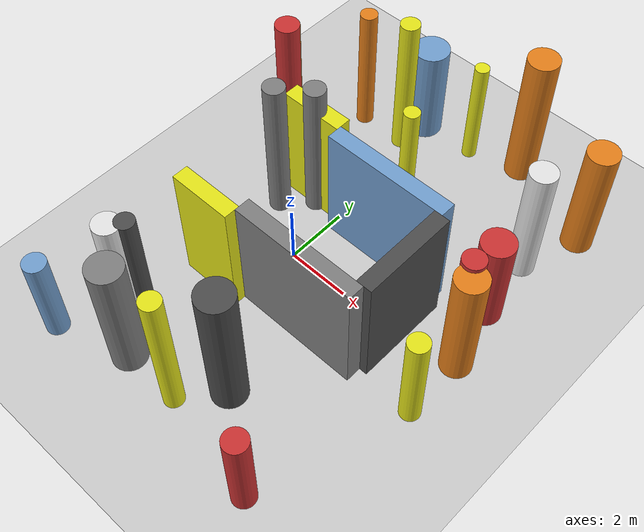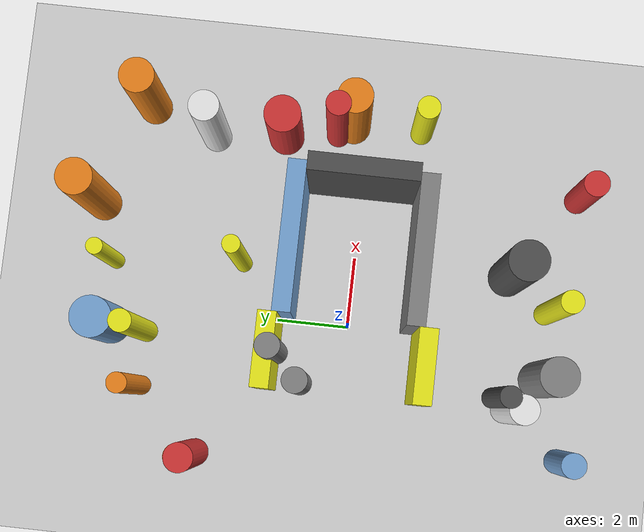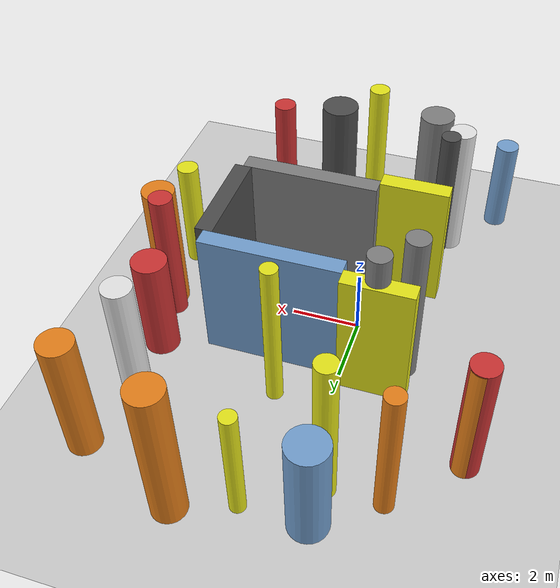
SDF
<?xml version='1.0'?>
<sdf version='1.6'>
  <world name='routeA_rl_v1__dense_recovery__rl_train__cul_de_sac_trap__000086'>
    <!-- Sun light -->
    <light name='sun' type='directional'>
      <cast_shadows>1</cast_shadows>
      <pose>0 0 10 0 0 0</pose>
      <diffuse>0.8 0.8 0.8 1</diffuse>
      <specular>0.2 0.2 0.2 1</specular>
      <attenuation>
        <range>1000</range>
        <constant>0.9</constant>
        <linear>0.01</linear>
        <quadratic>0.001</quadratic>
      </attenuation>
      <direction>-0.5 0.1 -0.9</direction>
    </light>

    <!-- Ground plane -->
    <model name='ground_plane'>
      <static>1</static>
      <link name='link'>
        <collision name='collision'>
          <geometry>
            <plane>
              <normal>0 0 1</normal>
              <size>100 100</size>
            </plane>
          </geometry>
          <surface>
            <contact>
              <collide_bitmask>65535</collide_bitmask>
              <ode/>
            </contact>
            <friction>
              <ode>
                <mu>100</mu>
                <mu2>50</mu2>
              </ode>
              <torsional><ode/></torsional>
            </friction>
            <bounce/>
          </surface>
          <max_contacts>10</max_contacts>
        </collision>
        <visual name='visual'>
          <cast_shadows>0</cast_shadows>
          <geometry>
            <plane>
              <normal>0 0 1</normal>
              <size>100 100</size>
            </plane>
          </geometry>
          <material>
            <script>
              <uri>file://media/materials/scripts/gazebo.material</uri>
              <n>Gazebo/Grey</n>
            </script>
          </material>
        </visual>
      </link>
    </model>

    <!-- Environment -->
    <magnetic_field>6e-06 2.3e-05 -4.2e-05</magnetic_field>
    <atmosphere type='adiabatic'/>
    <physics name='default_physics' default='0' type='ode'>
      <gravity>0 0 -9.8</gravity>
      <max_step_size>0.004</max_step_size>
      <real_time_factor>1</real_time_factor>
      <real_time_update_rate>250</real_time_update_rate>
    </physics>
    <scene>
      <ambient>0.4 0.4 0.4 1</ambient>
      <background>0.7 0.7 0.7 1</background>
      <shadows>1</shadows>
    </scene>
    <wind/>
    <spherical_coordinates>
      <surface_model>EARTH_WGS84</surface_model>
      <latitude_deg>0</latitude_deg>
      <longitude_deg>0</longitude_deg>
      <elevation>0</elevation>
      <heading_deg>0</heading_deg>
    </spherical_coordinates>

    <!-- ============ OBSTACLES (28) ============ -->
    <model name='trap_side_l'>
      <static>1</static>
      <link name='link'>
        <visual name='visual'>
          <geometry>
            <box>
              <size>4.0000 0.5000 4.0000</size>
            </box>
          </geometry>
          <material>
            <script>
              <n>Gazebo/Grey</n>
              <uri>file://media/materials/scripts/gazebo.material</uri>
            </script>
            <ambient>0.5 0.5 0.5 1</ambient>
          </material>
        </visual>
        <collision name='collision'>
          <geometry>
            <box>
              <size>4.0000 0.5000 4.0000</size>
            </box>
          </geometry>
          <max_contacts>10</max_contacts>
          <surface>
            <contact><ode/></contact>
            <bounce/>
            <friction>
              <ode><mu>1</mu><mu2>1</mu2></ode>
              <torsional><ode/></torsional>
            </friction>
          </surface>
        </collision>
      </link>
      <pose>2.0000 -1.7500 2.0000 0 0 0.0000</pose>
    </model>

    <model name='trap_side_r'>
      <static>1</static>
      <link name='link'>
        <visual name='visual'>
          <geometry>
            <box>
              <size>4.0000 0.5000 4.0000</size>
            </box>
          </geometry>
          <material>
            <script>
              <n>Gazebo/Blue</n>
              <uri>file://media/materials/scripts/gazebo.material</uri>
            </script>
            <ambient>0.447 0.624 0.812 1</ambient>
          </material>
        </visual>
        <collision name='collision'>
          <geometry>
            <box>
              <size>4.0000 0.5000 4.0000</size>
            </box>
          </geometry>
          <max_contacts>10</max_contacts>
          <surface>
            <contact><ode/></contact>
            <bounce/>
            <friction>
              <ode><mu>1</mu><mu2>1</mu2></ode>
              <torsional><ode/></torsional>
            </friction>
          </surface>
        </collision>
      </link>
      <pose>2.0000 1.7500 2.0000 0 0 0.0000</pose>
    </model>

    <model name='trap_back'>
      <static>1</static>
      <link name='link'>
        <visual name='visual'>
          <geometry>
            <box>
              <size>0.5000 3.0000 4.0000</size>
            </box>
          </geometry>
          <material>
            <script>
              <n>Gazebo/DarkGrey</n>
              <uri>file://media/materials/scripts/gazebo.material</uri>
            </script>
            <ambient>0.3 0.3 0.3 1</ambient>
          </material>
        </visual>
        <collision name='collision'>
          <geometry>
            <box>
              <size>0.5000 3.0000 4.0000</size>
            </box>
          </geometry>
          <max_contacts>10</max_contacts>
          <surface>
            <contact><ode/></contact>
            <bounce/>
            <friction>
              <ode><mu>1</mu><mu2>1</mu2></ode>
              <torsional><ode/></torsional>
            </friction>
          </surface>
        </collision>
      </link>
      <pose>4.0000 0.0000 2.0000 0 0 0.0000</pose>
    </model>

    <model name='trap_funnel_l'>
      <static>1</static>
      <link name='link'>
        <visual name='visual'>
          <geometry>
            <box>
              <size>2.0000 0.5000 4.0000</size>
            </box>
          </geometry>
          <material>
            <script>
              <n>Gazebo/Yellow</n>
              <uri>file://media/materials/scripts/gazebo.material</uri>
            </script>
            <ambient>0.9 0.9 0.1 1</ambient>
          </material>
        </visual>
        <collision name='collision'>
          <geometry>
            <box>
              <size>2.0000 0.5000 4.0000</size>
            </box>
          </geometry>
          <max_contacts>10</max_contacts>
          <surface>
            <contact><ode/></contact>
            <bounce/>
            <friction>
              <ode><mu>1</mu><mu2>1</mu2></ode>
              <torsional><ode/></torsional>
            </friction>
          </surface>
        </collision>
      </link>
      <pose>-1.0000 -2.1000 2.0000 0 0 0.0000</pose>
    </model>

    <model name='trap_funnel_r'>
      <static>1</static>
      <link name='link'>
        <visual name='visual'>
          <geometry>
            <box>
              <size>2.0000 0.5000 4.0000</size>
            </box>
          </geometry>
          <material>
            <script>
              <n>Gazebo/Yellow</n>
              <uri>file://media/materials/scripts/gazebo.material</uri>
            </script>
            <ambient>0.9 0.9 0.1 1</ambient>
          </material>
        </visual>
        <collision name='collision'>
          <geometry>
            <box>
              <size>2.0000 0.5000 4.0000</size>
            </box>
          </geometry>
          <max_contacts>10</max_contacts>
          <surface>
            <contact><ode/></contact>
            <bounce/>
            <friction>
              <ode><mu>1</mu><mu2>1</mu2></ode>
              <torsional><ode/></torsional>
            </friction>
          </surface>
        </collision>
      </link>
      <pose>-1.0000 2.1000 2.0000 0 0 0.0000</pose>
    </model>

    <model name='trap_scatter_0'>
      <static>1</static>
      <link name='link'>
        <visual name='visual'>
          <geometry>
            <cylinder>
              <radius>0.2921</radius>
              <length>4.3267</length>
            </cylinder>
          </geometry>
          <material>
            <script>
              <n>Gazebo/DarkGrey</n>
              <uri>file://media/materials/scripts/gazebo.material</uri>
            </script>
            <ambient>0.3 0.3 0.3 1</ambient>
          </material>
        </visual>
        <collision name='collision'>
          <geometry>
            <cylinder>
              <radius>0.2921</radius>
              <length>4.3267</length>
            </cylinder>
          </geometry>
          <max_contacts>10</max_contacts>
          <surface>
            <contact><ode/></contact>
            <bounce/>
            <friction>
              <ode><mu>1</mu><mu2>1</mu2></ode>
              <torsional><ode/></torsional>
            </friction>
          </surface>
        </collision>
      </link>
      <pose>-1.5495 -4.3039 2.1633 0 0 0.0000</pose>
    </model>

    <model name='trap_scatter_2'>
      <static>1</static>
      <link name='link'>
        <visual name='visual'>
          <geometry>
            <cylinder>
              <radius>0.5627</radius>
              <length>3.3087</length>
            </cylinder>
          </geometry>
          <material>
            <script>
              <n>Gazebo/Blue</n>
              <uri>file://media/materials/scripts/gazebo.material</uri>
            </script>
            <ambient>0.447 0.624 0.812 1</ambient>
          </material>
        </visual>
        <collision name='collision'>
          <geometry>
            <cylinder>
              <radius>0.5627</radius>
              <length>3.3087</length>
            </cylinder>
          </geometry>
          <max_contacts>10</max_contacts>
          <surface>
            <contact><ode/></contact>
            <bounce/>
            <friction>
              <ode><mu>1</mu><mu2>1</mu2></ode>
              <torsional><ode/></torsional>
            </friction>
          </surface>
        </collision>
      </link>
      <pose>-0.6096 6.7368 1.6544 0 0 0.0000</pose>
    </model>

    <model name='trap_scatter_3'>
      <static>1</static>
      <link name='link'>
        <visual name='visual'>
          <geometry>
            <cylinder>
              <radius>0.5402</radius>
              <length>4.6529</length>
            </cylinder>
          </geometry>
          <material>
            <script>
              <n>Gazebo/DarkGrey</n>
              <uri>file://media/materials/scripts/gazebo.material</uri>
            </script>
            <ambient>0.3 0.3 0.3 1</ambient>
          </material>
        </visual>
        <collision name='collision'>
          <geometry>
            <cylinder>
              <radius>0.5402</radius>
              <length>4.6529</length>
            </cylinder>
          </geometry>
          <max_contacts>10</max_contacts>
          <surface>
            <contact><ode/></contact>
            <bounce/>
            <friction>
              <ode><mu>1</mu><mu2>1</mu2></ode>
              <torsional><ode/></torsional>
            </friction>
          </surface>
        </collision>
      </link>
      <pose>1.9129 -4.4012 2.3265 0 0 0.0000</pose>
    </model>

    <model name='trap_scatter_4'>
      <static>1</static>
      <link name='link'>
        <visual name='visual'>
          <geometry>
            <cylinder>
              <radius>0.2256</radius>
              <length>3.6580</length>
            </cylinder>
          </geometry>
          <material>
            <script>
              <n>Gazebo/Yellow</n>
              <uri>file://media/materials/scripts/gazebo.material</uri>
            </script>
            <ambient>0.9 0.9 0.1 1</ambient>
          </material>
        </visual>
        <collision name='collision'>
          <geometry>
            <cylinder>
              <radius>0.2256</radius>
              <length>3.6580</length>
            </cylinder>
          </geometry>
          <max_contacts>10</max_contacts>
          <surface>
            <contact><ode/></contact>
            <bounce/>
            <friction>
              <ode><mu>1</mu><mu2>1</mu2></ode>
              <torsional><ode/></torsional>
            </friction>
          </surface>
        </collision>
      </link>
      <pose>1.2137 6.7939 1.8290 0 0 0.0000</pose>
    </model>

    <model name='trap_scatter_5'>
      <static>1</static>
      <link name='link'>
        <visual name='visual'>
          <geometry>
            <cylinder>
              <radius>0.3443</radius>
              <length>4.0080</length>
            </cylinder>
          </geometry>
          <material>
            <script>
              <n>Gazebo/Orange</n>
              <uri>file://media/materials/scripts/gazebo.material</uri>
            </script>
            <ambient>0.9 0.5 0.1 1</ambient>
          </material>
        </visual>
        <collision name='collision'>
          <geometry>
            <cylinder>
              <radius>0.3443</radius>
              <length>4.0080</length>
            </cylinder>
          </geometry>
          <max_contacts>10</max_contacts>
          <surface>
            <contact><ode/></contact>
            <bounce/>
            <friction>
              <ode><mu>1</mu><mu2>1</mu2></ode>
              <torsional><ode/></torsional>
            </friction>
          </surface>
        </collision>
      </link>
      <pose>-3.9531 3.9830 2.0040 0 0 0.0000</pose>
    </model>

    <model name='trap_scatter_6'>
      <static>1</static>
      <link name='link'>
        <visual name='visual'>
          <geometry>
            <cylinder>
              <radius>0.3383</radius>
              <length>4.2226</length>
            </cylinder>
          </geometry>
          <material>
            <script>
              <n>Gazebo/Red</n>
              <uri>file://media/materials/scripts/gazebo.material</uri>
            </script>
            <ambient>0.8 0.2 0.2 1</ambient>
          </material>
        </visual>
        <collision name='collision'>
          <geometry>
            <cylinder>
              <radius>0.3383</radius>
              <length>4.2226</length>
            </cylinder>
          </geometry>
          <max_contacts>10</max_contacts>
          <surface>
            <contact><ode/></contact>
            <bounce/>
            <friction>
              <ode><mu>1</mu><mu2>1</mu2></ode>
              <torsional><ode/></torsional>
            </friction>
          </surface>
        </collision>
      </link>
      <pose>5.5328 0.8438 2.1113 0 0 0.0000</pose>
    </model>

    <model name='trap_scatter_7'>
      <static>1</static>
      <link name='link'>
        <visual name='visual'>
          <geometry>
            <cylinder>
              <radius>0.3360</radius>
              <length>4.9538</length>
            </cylinder>
          </geometry>
          <material>
            <script>
              <n>Gazebo/Grey</n>
              <uri>file://media/materials/scripts/gazebo.material</uri>
            </script>
            <ambient>0.5 0.5 0.5 1</ambient>
          </material>
        </visual>
        <collision name='collision'>
          <geometry>
            <cylinder>
              <radius>0.3360</radius>
              <length>4.9538</length>
            </cylinder>
          </geometry>
          <max_contacts>10</max_contacts>
          <surface>
            <contact><ode/></contact>
            <bounce/>
            <friction>
              <ode><mu>1</mu><mu2>1</mu2></ode>
              <torsional><ode/></torsional>
            </friction>
          </surface>
        </collision>
      </link>
      <pose>-1.7202 1.1747 2.4769 0 0 0.0000</pose>
    </model>

    <model name='trap_scatter_8'>
      <static>1</static>
      <link name='link'>
        <visual name='visual'>
          <geometry>
            <cylinder>
              <radius>0.3127</radius>
              <length>3.5089</length>
            </cylinder>
          </geometry>
          <material>
            <script>
              <n>Gazebo/Yellow</n>
              <uri>file://media/materials/scripts/gazebo.material</uri>
            </script>
            <ambient>0.9 0.9 0.1 1</ambient>
          </material>
        </visual>
        <collision name='collision'>
          <geometry>
            <cylinder>
              <radius>0.3127</radius>
              <length>3.5089</length>
            </cylinder>
          </geometry>
          <max_contacts>10</max_contacts>
          <surface>
            <contact><ode/></contact>
            <bounce/>
            <friction>
              <ode><mu>1</mu><mu2>1</mu2></ode>
              <torsional><ode/></torsional>
            </friction>
          </surface>
        </collision>
      </link>
      <pose>5.8328 -1.5401 1.7545 0 0 0.0000</pose>
    </model>

    <model name='trap_scatter_9'>
      <static>1</static>
      <link name='link'>
        <visual name='visual'>
          <geometry>
            <cylinder>
              <radius>0.4874</radius>
              <length>4.6637</length>
            </cylinder>
          </geometry>
          <material>
            <script>
              <n>Gazebo/Orange</n>
              <uri>file://media/materials/scripts/gazebo.material</uri>
            </script>
            <ambient>0.9 0.5 0.1 1</ambient>
          </material>
        </visual>
        <collision name='collision'>
          <geometry>
            <cylinder>
              <radius>0.4874</radius>
              <length>4.6637</length>
            </cylinder>
          </geometry>
          <max_contacts>10</max_contacts>
          <surface>
            <contact><ode/></contact>
            <bounce/>
            <friction>
              <ode><mu>1</mu><mu2>1</mu2></ode>
              <torsional><ode/></torsional>
            </friction>
          </surface>
        </collision>
      </link>
      <pose>2.8281 7.3384 2.3318 0 0 0.0000</pose>
    </model>

    <model name='trap_scatter_10'>
      <static>1</static>
      <link name='link'>
        <visual name='visual'>
          <geometry>
            <cylinder>
              <radius>0.2401</radius>
              <length>4.7761</length>
            </cylinder>
          </geometry>
          <material>
            <script>
              <n>Gazebo/Yellow</n>
              <uri>file://media/materials/scripts/gazebo.material</uri>
            </script>
            <ambient>0.9 0.9 0.1 1</ambient>
          </material>
        </visual>
        <collision name='collision'>
          <geometry>
            <cylinder>
              <radius>0.2401</radius>
              <length>4.7761</length>
            </cylinder>
          </geometry>
          <max_contacts>10</max_contacts>
          <surface>
            <contact><ode/></contact>
            <bounce/>
            <friction>
              <ode><mu>1</mu><mu2>1</mu2></ode>
              <torsional><ode/></torsional>
            </friction>
          </surface>
        </collision>
      </link>
      <pose>1.5209 3.1479 2.3881 0 0 0.0000</pose>
    </model>

    <model name='trap_scatter_11'>
      <static>1</static>
      <link name='link'>
        <visual name='visual'>
          <geometry>
            <cylinder>
              <radius>0.3046</radius>
              <length>4.7234</length>
            </cylinder>
          </geometry>
          <material>
            <script>
              <n>Gazebo/Yellow</n>
              <uri>file://media/materials/scripts/gazebo.material</uri>
            </script>
            <ambient>0.9 0.9 0.1 1</ambient>
          </material>
        </visual>
        <collision name='collision'>
          <geometry>
            <cylinder>
              <radius>0.3046</radius>
              <length>4.7234</length>
            </cylinder>
          </geometry>
          <max_contacts>10</max_contacts>
          <surface>
            <contact><ode/></contact>
            <bounce/>
            <friction>
              <ode><mu>1</mu><mu2>1</mu2></ode>
              <torsional><ode/></torsional>
            </friction>
          </surface>
        </collision>
      </link>
      <pose>0.9802 -5.5703 2.3617 0 0 0.0000</pose>
    </model>

    <model name='trap_scatter_12'>
      <static>1</static>
      <link name='link'>
        <visual name='visual'>
          <geometry>
            <cylinder>
              <radius>0.4768</radius>
              <length>3.9310</length>
            </cylinder>
          </geometry>
          <material>
            <script>
              <n>Gazebo/Orange</n>
              <uri>file://media/materials/scripts/gazebo.material</uri>
            </script>
            <ambient>0.9 0.5 0.1 1</ambient>
          </material>
        </visual>
        <collision name='collision'>
          <geometry>
            <cylinder>
              <radius>0.4768</radius>
              <length>3.9310</length>
            </cylinder>
          </geometry>
          <max_contacts>10</max_contacts>
          <surface>
            <contact><ode/></contact>
            <bounce/>
            <friction>
              <ode><mu>1</mu><mu2>1</mu2></ode>
              <torsional><ode/></torsional>
            </friction>
          </surface>
        </collision>
      </link>
      <pose>5.7739 6.2037 1.9655 0 0 0.0000</pose>
    </model>

    <model name='trap_scatter_13'>
      <static>1</static>
      <link name='link'>
        <visual name='visual'>
          <geometry>
            <cylinder>
              <radius>0.3894</radius>
              <length>4.0336</length>
            </cylinder>
          </geometry>
          <material>
            <script>
              <n>Gazebo/Red</n>
              <uri>file://media/materials/scripts/gazebo.material</uri>
            </script>
            <ambient>0.8 0.2 0.2 1</ambient>
          </material>
        </visual>
        <collision name='collision'>
          <geometry>
            <cylinder>
              <radius>0.3894</radius>
              <length>4.0336</length>
            </cylinder>
          </geometry>
          <max_contacts>10</max_contacts>
          <surface>
            <contact><ode/></contact>
            <bounce/>
            <friction>
              <ode><mu>1</mu><mu2>1</mu2></ode>
              <torsional><ode/></torsional>
            </friction>
          </surface>
        </collision>
      </link>
      <pose>-3.9727 3.9301 2.0168 0 0 0.0000</pose>
    </model>

    <model name='trap_scatter_14'>
      <static>1</static>
      <link name='link'>
        <visual name='visual'>
          <geometry>
            <cylinder>
              <radius>0.4750</radius>
              <length>4.0962</length>
            </cylinder>
          </geometry>
          <material>
            <script>
              <n>Gazebo/Orange</n>
              <uri>file://media/materials/scripts/gazebo.material</uri>
            </script>
            <ambient>0.9 0.5 0.1 1</ambient>
          </material>
        </visual>
        <collision name='collision'>
          <geometry>
            <cylinder>
              <radius>0.4750</radius>
              <length>4.0962</length>
            </cylinder>
          </geometry>
          <max_contacts>10</max_contacts>
          <surface>
            <contact><ode/></contact>
            <bounce/>
            <friction>
              <ode><mu>1</mu><mu2>1</mu2></ode>
              <torsional><ode/></torsional>
            </friction>
          </surface>
        </collision>
      </link>
      <pose>5.8063 0.4250 2.0481 0 0 0.0000</pose>
    </model>

    <model name='trap_scatter_15'>
      <static>1</static>
      <link name='link'>
        <visual name='visual'>
          <geometry>
            <cylinder>
              <radius>0.3319</radius>
              <length>4.8528</length>
            </cylinder>
          </geometry>
          <material>
            <script>
              <n>Gazebo/Grey</n>
              <uri>file://media/materials/scripts/gazebo.material</uri>
            </script>
            <ambient>0.5 0.5 0.5 1</ambient>
          </material>
        </visual>
        <collision name='collision'>
          <geometry>
            <cylinder>
              <radius>0.3319</radius>
              <length>4.8528</length>
            </cylinder>
          </geometry>
          <max_contacts>10</max_contacts>
          <surface>
            <contact><ode/></contact>
            <bounce/>
            <friction>
              <ode><mu>1</mu><mu2>1</mu2></ode>
              <torsional><ode/></torsional>
            </friction>
          </surface>
        </collision>
      </link>
      <pose>-0.9301 1.9518 2.4264 0 0 0.0000</pose>
    </model>

    <model name='trap_scatter_16'>
      <static>1</static>
      <link name='link'>
        <visual name='visual'>
          <geometry>
            <cylinder>
              <radius>0.5223</radius>
              <length>4.1779</length>
            </cylinder>
          </geometry>
          <material>
            <script>
              <n>Gazebo/Grey</n>
              <uri>file://media/materials/scripts/gazebo.material</uri>
            </script>
            <ambient>0.5 0.5 0.5 1</ambient>
          </material>
        </visual>
        <collision name='collision'>
          <geometry>
            <cylinder>
              <radius>0.5223</radius>
              <length>4.1779</length>
            </cylinder>
          </geometry>
          <max_contacts>10</max_contacts>
          <surface>
            <contact><ode/></contact>
            <bounce/>
            <friction>
              <ode><mu>1</mu><mu2>1</mu2></ode>
              <torsional><ode/></torsional>
            </friction>
          </surface>
        </collision>
      </link>
      <pose>-0.9064 -5.5128 2.0890 0 0 0.0000</pose>
    </model>

    <model name='trap_scatter_17'>
      <static>1</static>
      <link name='link'>
        <visual name='visual'>
          <geometry>
            <cylinder>
              <radius>0.3031</radius>
              <length>4.8930</length>
            </cylinder>
          </geometry>
          <material>
            <script>
              <n>Gazebo/Yellow</n>
              <uri>file://media/materials/scripts/gazebo.material</uri>
            </script>
            <ambient>0.9 0.9 0.1 1</ambient>
          </material>
        </visual>
        <collision name='collision'>
          <geometry>
            <cylinder>
              <radius>0.3031</radius>
              <length>4.8930</length>
            </cylinder>
          </geometry>
          <max_contacts>10</max_contacts>
          <surface>
            <contact><ode/></contact>
            <bounce/>
            <friction>
              <ode><mu>1</mu><mu2>1</mu2></ode>
              <torsional><ode/></torsional>
            </friction>
          </surface>
        </collision>
      </link>
      <pose>-0.7047 5.6836 2.4465 0 0 0.0000</pose>
    </model>

    <model name='trap_scatter_18'>
      <static>1</static>
      <link name='link'>
        <visual name='visual'>
          <geometry>
            <cylinder>
              <radius>0.2713</radius>
              <length>4.3623</length>
            </cylinder>
          </geometry>
          <material>
            <script>
              <n>Gazebo/Orange</n>
              <uri>file://media/materials/scripts/gazebo.material</uri>
            </script>
            <ambient>0.9 0.5 0.1 1</ambient>
          </material>
        </visual>
        <collision name='collision'>
          <geometry>
            <cylinder>
              <radius>0.2713</radius>
              <length>4.3623</length>
            </cylinder>
          </geometry>
          <max_contacts>10</max_contacts>
          <surface>
            <contact><ode/></contact>
            <bounce/>
            <friction>
              <ode><mu>1</mu><mu2>1</mu2></ode>
              <torsional><ode/></torsional>
            </friction>
          </surface>
        </collision>
      </link>
      <pose>-2.2514 5.6622 2.1812 0 0 0.0000</pose>
    </model>

    <model name='trap_scatter_20'>
      <static>1</static>
      <link name='link'>
        <visual name='visual'>
          <geometry>
            <cylinder>
              <radius>0.5058</radius>
              <length>3.2418</length>
            </cylinder>
          </geometry>
          <material>
            <script>
              <n>Gazebo/Red</n>
              <uri>file://media/materials/scripts/gazebo.material</uri>
            </script>
            <ambient>0.8 0.2 0.2 1</ambient>
          </material>
        </visual>
        <collision name='collision'>
          <geometry>
            <cylinder>
              <radius>0.5058</radius>
              <length>3.2418</length>
            </cylinder>
          </geometry>
          <max_contacts>10</max_contacts>
          <surface>
            <contact><ode/></contact>
            <bounce/>
            <friction>
              <ode><mu>1</mu><mu2>1</mu2></ode>
              <torsional><ode/></torsional>
            </friction>
          </surface>
        </collision>
      </link>
      <pose>5.3108 2.3282 1.6209 0 0 0.0000</pose>
    </model>

    <model name='trap_scatter_21'>
      <static>1</static>
      <link name='link'>
        <visual name='visual'>
          <geometry>
            <cylinder>
              <radius>0.3550</radius>
              <length>3.1606</length>
            </cylinder>
          </geometry>
          <material>
            <script>
              <n>Gazebo/Red</n>
              <uri>file://media/materials/scripts/gazebo.material</uri>
            </script>
            <ambient>0.8 0.2 0.2 1</ambient>
          </material>
        </visual>
        <collision name='collision'>
          <geometry>
            <cylinder>
              <radius>0.3550</radius>
              <length>3.1606</length>
            </cylinder>
          </geometry>
          <max_contacts>10</max_contacts>
          <surface>
            <contact><ode/></contact>
            <bounce/>
            <friction>
              <ode><mu>1</mu><mu2>1</mu2></ode>
              <torsional><ode/></torsional>
            </friction>
          </surface>
        </collision>
      </link>
      <pose>4.3372 -6.1972 1.5803 0 0 0.0000</pose>
    </model>

    <model name='trap_scatter_22'>
      <static>1</static>
      <link name='link'>
        <visual name='visual'>
          <geometry>
            <cylinder>
              <radius>0.3950</radius>
              <length>4.3224</length>
            </cylinder>
          </geometry>
          <material>
            <script>
              <n>Gazebo/White</n>
              <uri>file://media/materials/scripts/gazebo.material</uri>
            </script>
            <ambient>0.9 0.9 0.9 1</ambient>
          </material>
        </visual>
        <collision name='collision'>
          <geometry>
            <cylinder>
              <radius>0.3950</radius>
              <length>4.3224</length>
            </cylinder>
          </geometry>
          <max_contacts>10</max_contacts>
          <surface>
            <contact><ode/></contact>
            <bounce/>
            <friction>
              <ode><mu>1</mu><mu2>1</mu2></ode>
              <torsional><ode/></torsional>
            </friction>
          </surface>
        </collision>
      </link>
      <pose>-1.8349 -4.6754 2.1612 0 0 0.0000</pose>
    </model>

    <model name='trap_scatter_23'>
      <static>1</static>
      <link name='link'>
        <visual name='visual'>
          <geometry>
            <cylinder>
              <radius>0.4142</radius>
              <length>4.1851</length>
            </cylinder>
          </geometry>
          <material>
            <script>
              <n>Gazebo/White</n>
              <uri>file://media/materials/scripts/gazebo.material</uri>
            </script>
            <ambient>0.9 0.9 0.9 1</ambient>
          </material>
        </visual>
        <collision name='collision'>
          <geometry>
            <cylinder>
              <radius>0.4142</radius>
              <length>4.1851</length>
            </cylinder>
          </geometry>
          <max_contacts>10</max_contacts>
          <surface>
            <contact><ode/></contact>
            <bounce/>
            <friction>
              <ode><mu>1</mu><mu2>1</mu2></ode>
              <torsional><ode/></torsional>
            </friction>
          </surface>
        </collision>
      </link>
      <pose>5.1015 4.3259 2.0926 0 0 0.0000</pose>
    </model>

    <model name='trap_scatter_24'>
      <static>1</static>
      <link name='link'>
        <visual name='visual'>
          <geometry>
            <cylinder>
              <radius>0.3429</radius>
              <length>3.0123</length>
            </cylinder>
          </geometry>
          <material>
            <script>
              <n>Gazebo/Blue</n>
              <uri>file://media/materials/scripts/gazebo.material</uri>
            </script>
            <ambient>0.447 0.624 0.812 1</ambient>
          </material>
        </visual>
        <collision name='collision'>
          <geometry>
            <cylinder>
              <radius>0.3429</radius>
              <length>3.0123</length>
            </cylinder>
          </geometry>
          <max_contacts>10</max_contacts>
          <surface>
            <contact><ode/></contact>
            <bounce/>
            <friction>
              <ode><mu>1</mu><mu2>1</mu2></ode>
              <torsional><ode/></torsional>
            </friction>
          </surface>
        </collision>
      </link>
      <pose>-3.1399 -6.2738 1.5061 0 0 0.0000</pose>
    </model>

    <!-- GUI camera -->
    <gui fullscreen='0'>
      <camera name='user_camera'>
        <pose>-15 0 18 0 0.85 0.15</pose>
        <view_controller>orbit</view_controller>
        <projection_type>perspective</projection_type>
      </camera>
    </gui>
  </world>
</sdf>
